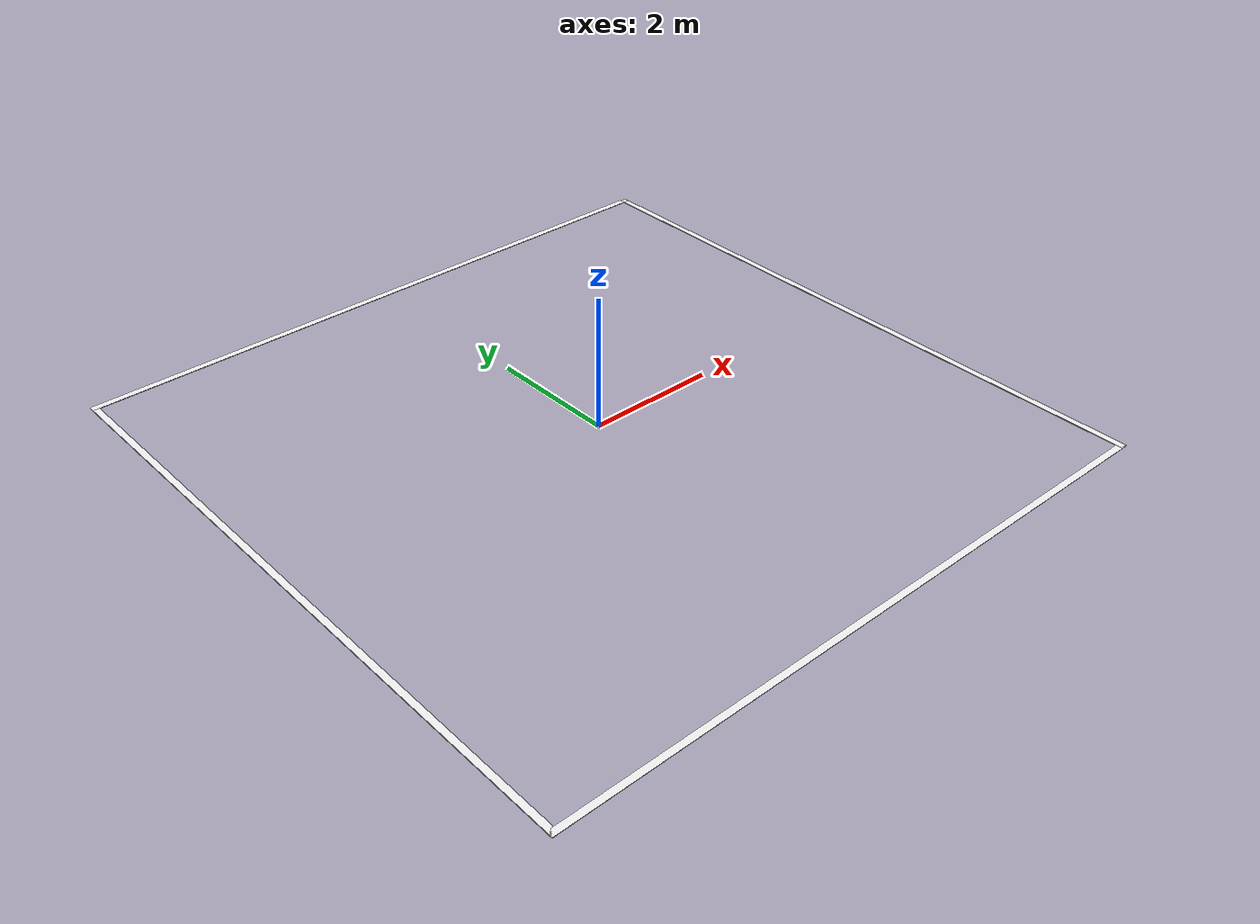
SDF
<?xml version='1.0'?>
<sdf version='1.6'>
  <model name='designation_area'>
    <link name='link_0'>
      <pose frame=''>0 5 0 0 0 0</pose>
      <inertial>
        <mass>1</mass>
        <inertia>
          <ixx>0.166667</ixx>
          <ixy>0</ixy>
          <ixz>0</ixz>
          <iyy>0.166667</iyy>
          <iyz>0</iyz>
          <izz>0.166667</izz>
        </inertia>
        <pose frame=''>0 0 0 0 0 0</pose>
      </inertial>
      <gravity>1</gravity>
      <self_collide>0</self_collide>
      <kinematic>0</kinematic>
      <visual name='visual'>
        <pose frame=''>0 0 0 0 0 0</pose>
        <geometry>
          <box>
            <size>10.1 0.1 0.01</size>
          </box>
        </geometry>
        <material>
          <script>
            <uri>file://worlds/materials/scripts</uri>
            <uri>file://worlds/materials/textures</uri>
            <name>MbzircGazebo/WhiteTexture</name>
          </script>
        </material>
        <transparency>0</transparency>
        <cast_shadows>1</cast_shadows>
      </visual>
      <collision name='collision'>
        <laser_retro>0</laser_retro>
        <max_contacts>10</max_contacts>
        <pose frame=''>0 0 0 0 0 0</pose>
        <geometry>
          <box>
            <size>10.1 0.1 0.01</size>
          </box>
        </geometry>
        <surface>
          <friction>
            <ode>
              <mu>1</mu>
              <mu2>1</mu2>
              <fdir1>0 0 0</fdir1>
              <slip1>0</slip1>
              <slip2>0</slip2>
            </ode>
            <torsional>
              <coefficient>1</coefficient>
              <patch_radius>0</patch_radius>
              <surface_radius>0</surface_radius>
              <use_patch_radius>1</use_patch_radius>
              <ode>
                <slip>0</slip>
              </ode>
            </torsional>
          </friction>
          <bounce>
            <restitution_coefficient>0</restitution_coefficient>
            <threshold>1e+06</threshold>
          </bounce>
          <contact>
            <collide_without_contact>0</collide_without_contact>
            <collide_without_contact_bitmask>1</collide_without_contact_bitmask>
            <collide_bitmask>1</collide_bitmask>
            <ode>
              <soft_cfm>0</soft_cfm>
              <soft_erp>0.2</soft_erp>
              <kp>1e+13</kp>
              <kd>1</kd>
              <max_vel>0.01</max_vel>
              <min_depth>0</min_depth>
            </ode>
            <bullet>
              <split_impulse>1</split_impulse>
              <split_impulse_penetration_threshold>-0.01</split_impulse_penetration_threshold>
              <soft_cfm>0</soft_cfm>
              <soft_erp>0.2</soft_erp>
              <kp>1e+13</kp>
              <kd>1</kd>
            </bullet>
          </contact>
        </surface>
      </collision>
    </link>
    <link name='link_1'>
      <pose frame=''>5 0 0 0 0 0</pose>
      <inertial>
        <mass>1</mass>
        <inertia>
          <ixx>0.166667</ixx>
          <ixy>0</ixy>
          <ixz>0</ixz>
          <iyy>0.166667</iyy>
          <iyz>0</iyz>
          <izz>0.166667</izz>
        </inertia>
        <pose frame=''>0 0 0 0 0 0</pose>
      </inertial>
      <gravity>1</gravity>
      <self_collide>0</self_collide>
      <kinematic>0</kinematic>
      <visual name='visual'>
        <pose frame=''>0 0 0 0 0 0</pose>
        <geometry>
          <box>
            <size>0.1 10.1 0.01</size>
          </box>
        </geometry>
        <material>
          <script>
            <uri>file://worlds/materials/scripts</uri>
            <uri>file://worlds/materials/textures</uri>
            <name>MbzircGazebo/WhiteTexture</name>
          </script>
        </material>
        <transparency>0</transparency>
        <cast_shadows>1</cast_shadows>
      </visual>
      <collision name='collision'>
        <laser_retro>0</laser_retro>
        <max_contacts>10</max_contacts>
        <pose frame=''>0 0 0 0 0 0</pose>
        <geometry>
          <box>
            <size>0.1 10.1 0.01</size>
          </box>
        </geometry>
        <surface>
          <friction>
            <ode>
              <mu>1</mu>
              <mu2>1</mu2>
              <fdir1>0 0 0</fdir1>
              <slip1>0</slip1>
              <slip2>0</slip2>
            </ode>
            <torsional>
              <coefficient>1</coefficient>
              <patch_radius>0</patch_radius>
              <surface_radius>0</surface_radius>
              <use_patch_radius>1</use_patch_radius>
              <ode>
                <slip>0</slip>
              </ode>
            </torsional>
          </friction>
          <bounce>
            <restitution_coefficient>0</restitution_coefficient>
            <threshold>1e+06</threshold>
          </bounce>
          <contact>
            <collide_without_contact>0</collide_without_contact>
            <collide_without_contact_bitmask>1</collide_without_contact_bitmask>
            <collide_bitmask>1</collide_bitmask>
            <ode>
              <soft_cfm>0</soft_cfm>
              <soft_erp>0.2</soft_erp>
              <kp>1e+13</kp>
              <kd>1</kd>
              <max_vel>0.01</max_vel>
              <min_depth>0</min_depth>
            </ode>
            <bullet>
              <split_impulse>1</split_impulse>
              <split_impulse_penetration_threshold>-0.01</split_impulse_penetration_threshold>
              <soft_cfm>0</soft_cfm>
              <soft_erp>0.2</soft_erp>
              <kp>1e+13</kp>
              <kd>1</kd>
            </bullet>
          </contact>
        </surface>
      </collision>
    </link>
    <link name='link_2'>
      <pose frame=''>0 -5 0 0 0 0</pose>
      <inertial>
        <mass>1</mass>
        <inertia>
          <ixx>0.166667</ixx>
          <ixy>0</ixy>
          <ixz>0</ixz>
          <iyy>0.166667</iyy>
          <iyz>0</iyz>
          <izz>0.166667</izz>
        </inertia>
        <pose frame=''>0 0 0 0 0 0</pose>
      </inertial>
      <gravity>1</gravity>
      <self_collide>0</self_collide>
      <kinematic>0</kinematic>
      <visual name='visual'>
        <pose frame=''>0 0 0 0 0 0</pose>
        <geometry>
          <box>
            <size>10.1 0.1 0.01</size>
          </box>
        </geometry>
        <material>
          <script>
            <uri>file://worlds/materials/scripts</uri>
            <uri>file://worlds/materials/textures</uri>
            <name>MbzircGazebo/WhiteTexture</name>
          </script>
        </material>
        <transparency>0</transparency>
        <cast_shadows>1</cast_shadows>
      </visual>
      <collision name='collision'>
        <laser_retro>0</laser_retro>
        <max_contacts>10</max_contacts>
        <pose frame=''>0 0 0 0 0 0</pose>
        <geometry>
          <box>
            <size>10.1 0.1 0.01</size>
          </box>
        </geometry>
        <surface>
          <friction>
            <ode>
              <mu>1</mu>
              <mu2>1</mu2>
              <fdir1>0 0 0</fdir1>
              <slip1>0</slip1>
              <slip2>0</slip2>
            </ode>
            <torsional>
              <coefficient>1</coefficient>
              <patch_radius>0</patch_radius>
              <surface_radius>0</surface_radius>
              <use_patch_radius>1</use_patch_radius>
              <ode>
                <slip>0</slip>
              </ode>
            </torsional>
          </friction>
          <bounce>
            <restitution_coefficient>0</restitution_coefficient>
            <threshold>1e+06</threshold>
          </bounce>
          <contact>
            <collide_without_contact>0</collide_without_contact>
            <collide_without_contact_bitmask>1</collide_without_contact_bitmask>
            <collide_bitmask>1</collide_bitmask>
            <ode>
              <soft_cfm>0</soft_cfm>
              <soft_erp>0.2</soft_erp>
              <kp>1e+13</kp>
              <kd>1</kd>
              <max_vel>0.01</max_vel>
              <min_depth>0</min_depth>
            </ode>
            <bullet>
              <split_impulse>1</split_impulse>
              <split_impulse_penetration_threshold>-0.01</split_impulse_penetration_threshold>
              <soft_cfm>0</soft_cfm>
              <soft_erp>0.2</soft_erp>
              <kp>1e+13</kp>
              <kd>1</kd>
            </bullet>
          </contact>
        </surface>
      </collision>
    </link>
    <link name='link_3'>
      <pose frame=''>-5 0 0 0 0 0</pose>
      <inertial>
        <mass>1</mass>
        <inertia>
          <ixx>0.166667</ixx>
          <ixy>0</ixy>
          <ixz>0</ixz>
          <iyy>0.166667</iyy>
          <iyz>0</iyz>
          <izz>0.166667</izz>
        </inertia>
        <pose frame=''>0 0 0 0 0 0</pose>
      </inertial>
      <gravity>1</gravity>
      <self_collide>0</self_collide>
      <kinematic>0</kinematic>
      <visual name='visual'>
        <pose frame=''>0 0 0 0 0 0</pose>
        <geometry>
          <box>
            <size>0.1 10.1 0.01</size>
          </box>
        </geometry>
        <material>
          <script>
            <uri>file://worlds/materials/scripts</uri>
            <uri>file://worlds/materials/textures</uri>
            <name>MbzircGazebo/WhiteTexture</name>
          </script>
        </material>
        <transparency>0</transparency>
        <cast_shadows>1</cast_shadows>
      </visual>
      <collision name='collision'>
        <laser_retro>0</laser_retro>
        <max_contacts>10</max_contacts>
        <pose frame=''>0 0 0 0 0 0</pose>
        <geometry>
          <box>
            <size>0.1 10.1 0.01</size>
          </box>
        </geometry>
        <surface>
          <friction>
            <ode>
              <mu>1</mu>
              <mu2>1</mu2>
              <fdir1>0 0 0</fdir1>
              <slip1>0</slip1>
              <slip2>0</slip2>
            </ode>
            <torsional>
              <coefficient>1</coefficient>
              <patch_radius>0</patch_radius>
              <surface_radius>0</surface_radius>
              <use_patch_radius>1</use_patch_radius>
              <ode>
                <slip>0</slip>
              </ode>
            </torsional>
          </friction>
          <bounce>
            <restitution_coefficient>0</restitution_coefficient>
            <threshold>1e+06</threshold>
          </bounce>
          <contact>
            <collide_without_contact>0</collide_without_contact>
            <collide_without_contact_bitmask>1</collide_without_contact_bitmask>
            <collide_bitmask>1</collide_bitmask>
            <ode>
              <soft_cfm>0</soft_cfm>
              <soft_erp>0.2</soft_erp>
              <kp>1e+13</kp>
              <kd>1</kd>
              <max_vel>0.01</max_vel>
              <min_depth>0</min_depth>
            </ode>
            <bullet>
              <split_impulse>1</split_impulse>
              <split_impulse_penetration_threshold>-0.01</split_impulse_penetration_threshold>
              <soft_cfm>0</soft_cfm>
              <soft_erp>0.2</soft_erp>
              <kp>1e+13</kp>
              <kd>1</kd>
            </bullet>
          </contact>
        </surface>
      </collision>
    </link>
    <static>1</static>
    <allow_auto_disable>1</allow_auto_disable>
  </model>
</sdf>
